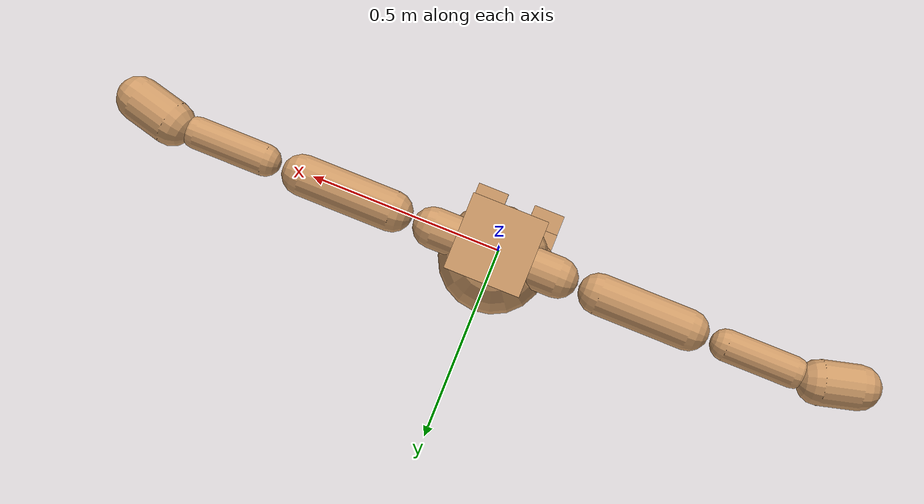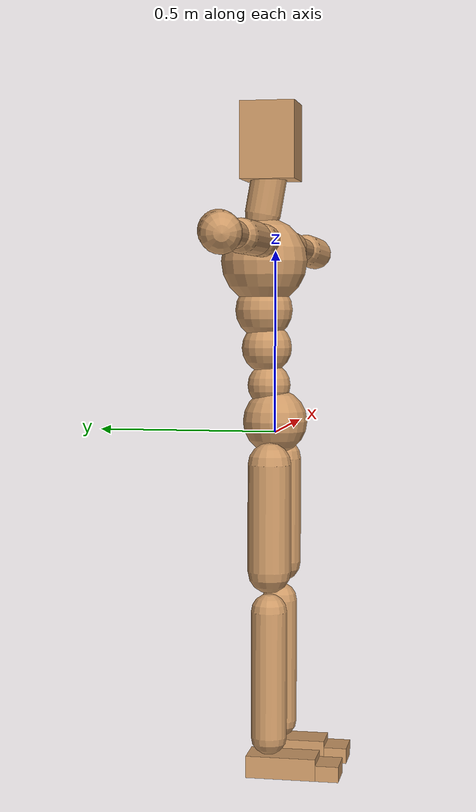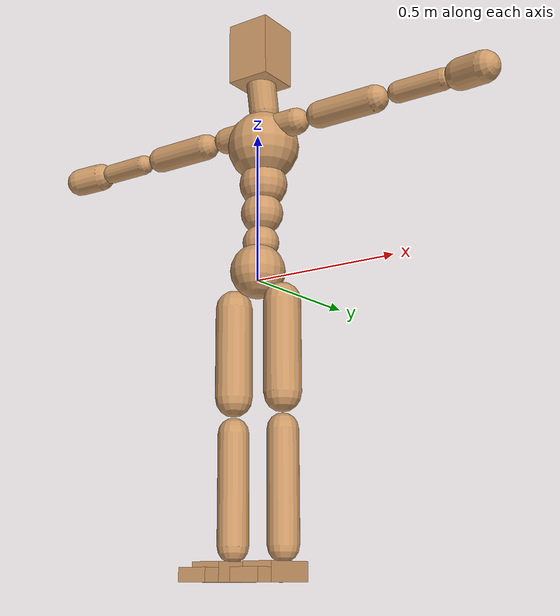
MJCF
<mujoco model="humanoid">
  <compiler coordinate="local" />
  <asset>
    <texture type="skybox" builtin="gradient" rgb1=".4 .5 .6" rgb2="0 0 0" width="100" height="100" />
    <texture builtin="flat" height="1278" mark="cross" markrgb="1 1 1" name="texgeom" random="0.01" rgb1="0.8 0.6 0.4" rgb2="0.8 0.6 0.4" type="cube" width="127" />
    <texture builtin="checker" height="100" name="texplane" rgb1="0 0 0" rgb2="0.8 0.8 0.8" type="2d" width="100" />
    <material name="MatPlane" reflectance="0.5" shininess="1" specular="1" texrepeat="60 60" texture="texplane" />
    <material name="geom" texture="texgeom" texuniform="true" />
  </asset>
  <worldbody>
    <light cutoff="100" diffuse="1 1 1" dir="-0 0 -1.3" directional="true" exponent="1" pos="0 0 1.3" specular=".1 .1 .1" />
    <body name="Hips" pos="0.0000 0.0000 0.0000">
      <geom type="sphere" size="0.09" pos="0 0 0.03" density="1000" material="geom" conaffinity="1" condim="3" contype="7" margin="0.001" rgba="0.8 0.6 .4 1" />
        <body name="Spine" pos="0.0000 0.0473 0.0710">
          <joint name="Spine_x" type="hinge" pos="0 0 0" axis="1.0000 0.0000 0.0000" stiffness="800" damping="80" armature="0.02" range="-180.0000 180.0000" limited="true" />
          <joint name="Spine_y" type="hinge" pos="0 0 0" axis="0.0000 1.0000 0.0000" stiffness="800" damping="80" armature="0.02" range="-180.0000 180.0000" limited="true" />
          <joint name="Spine_z" type="hinge" pos="0 0 0" axis="0.0000 0.0000 1.0000" stiffness="800" damping="80" armature="0.02" range="-180.0000 180.0000" limited="true" />
          <geom type="sphere" size="0.06" pos="0 -0.03 0.06" density="1000" material="geom" conaffinity="1" condim="3" contype="7" margin="0.001" rgba="0.8 0.6 .4 1" />
            <body name="Spine1" pos="0.0000 0.0164 0.0932">
              <joint name="Spine1_x" type="hinge" pos="0 0 0" axis="1.0000 0.0000 0.0000" stiffness="800" damping="80" armature="0.02" range="-180.0000 180.0000" limited="true" />
              <joint name="Spine1_y" type="hinge" pos="0 0 0" axis="0.0000 1.0000 0.0000" stiffness="800" damping="80" armature="0.02" range="-180.0000 180.0000" limited="true" />
              <joint name="Spine1_z" type="hinge" pos="0 0 0" axis="0.0000 0.0000 1.0000" stiffness="800" damping="80" armature="0.02" range="-180.0000 180.0000" limited="true" />
              <geom type="sphere" size="0.07" pos="0 -0.04 0.07" density="1000" material="geom" conaffinity="1" condim="3" contype="7" margin="0.001" rgba="0.8 0.6 .4 1" />
                <body name="Spine2" pos="0.0000 0.0082 0.0943">
                  <joint name="Spine2_x" type="hinge" pos="0 0 0" axis="1.0000 0.0000 0.0000" stiffness="800" damping="80" armature="0.02" range="-180.0000 180.0000" limited="true" />
                  <joint name="Spine2_y" type="hinge" pos="0 0 0" axis="0.0000 1.0000 0.0000" stiffness="800" damping="80" armature="0.02" range="-180.0000 180.0000" limited="true" />
                  <joint name="Spine2_z" type="hinge" pos="0 0 0" axis="0.0000 0.0000 1.0000" stiffness="800" damping="80" armature="0.02" range="-180.0000 180.0000" limited="true" />
                  <geom type="sphere" size="0.08" pos="0 -0.04 0.08" density="1000" material="geom" conaffinity="1" condim="3" contype="7" margin="0.001" rgba="0.8 0.6 .4 1" />
                    <body name="Spine3" pos="0.0000 0.0000 0.0947">
                      <joint name="Spine3_x" type="hinge" pos="0 0 0" axis="1.0000 0.0000 0.0000" stiffness="800" damping="80" armature="0.02" range="-180.0000 180.0000" limited="true" />
                      <joint name="Spine3_y" type="hinge" pos="0 0 0" axis="0.0000 1.0000 0.0000" stiffness="800" damping="80" armature="0.02" range="-180.0000 180.0000" limited="true" />
                      <joint name="Spine3_z" type="hinge" pos="0 0 0" axis="0.0000 0.0000 1.0000" stiffness="800" damping="80" armature="0.02" range="-180.0000 180.0000" limited="true" />
                      <geom type="sphere" size="0.12" pos="0 -0.04 0.12" density="1000" material="geom" conaffinity="1" condim="3" contype="7" margin="0.001" rgba="0.8 0.6 .4 1" />
                        <body name="Neck" pos="0.0000 -0.0355 0.2485">
                          <joint name="Neck_x" type="hinge" pos="0 0 0" axis="1.0000 0.0000 0.0000" stiffness="200" damping="20" armature="0.02" range="-180.0000 180.0000" limited="true" />
                          <joint name="Neck_y" type="hinge" pos="0 0 0" axis="0.0000 1.0000 0.0000" stiffness="200" damping="20" armature="0.02" range="-180.0000 180.0000" limited="true" />
                          <joint name="Neck_z" type="hinge" pos="0 0 0" axis="0.0000 0.0000 1.0000" stiffness="200" damping="20" armature="0.02" range="-180.0000 180.0000" limited="true" />
                          <geom type="capsule" size="0.05" contype="1" conaffinity="1" fromto="0.0000 0.0000 0.0000 0.0000 -0.0203 0.1154" density="1000" material="geom" condim="3" margin="0.001" rgba="0.8 0.6 .4 1" />
                            <body name="Head" pos="0.0000 -0.0226 0.1282">
                              <joint name="Head_x" type="hinge" pos="0 0 0" axis="1.0000 0.0000 0.0000" stiffness="200" damping="20" armature="0.02" range="-180.0000 180.0000" limited="true" />
                              <joint name="Head_y" type="hinge" pos="0 0 0" axis="0.0000 1.0000 0.0000" stiffness="200" damping="20" armature="0.02" range="-180.0000 180.0000" limited="true" />
                              <joint name="Head_z" type="hinge" pos="0 0 0" axis="0.0000 0.0000 1.0000" stiffness="200" damping="20" armature="0.02" range="-180.0000 180.0000" limited="true" />
                              <geom type="box" size="0.075 0.075 0.105" pos="0 0 0.07" quat="1 0 0 0" density="1000" material="geom" conaffinity="1" condim="3" contype="7" margin="0.001" rgba="0.8 0.6 .4 1" />
                            </body>
                        </body>
                        <body name="RightShoulder" pos="-0.0320 -0.0533 0.1728">
                          <joint name="RightShoulder_x" type="hinge" pos="0 0 0" axis="1.0000 0.0000 0.0000" stiffness="400" damping="40" armature="0.02" range="-180.0000 180.0000" limited="true" />
                          <joint name="RightShoulder_y" type="hinge" pos="0 0 0" axis="0.0000 1.0000 0.0000" stiffness="400" damping="40" armature="0.02" range="-180.0000 180.0000" limited="true" />
                          <joint name="RightShoulder_z" type="hinge" pos="0 0 0" axis="0.0000 0.0000 1.0000" stiffness="400" damping="40" armature="0.02" range="-180.0000 180.0000" limited="true" />
                          <geom type="capsule" size="0.045" contype="1" conaffinity="1" fromto="-0.045 0.0000 0.0000 -0.11 0.0000 0.0000" density="1000" material="geom" condim="3" margin="0.001" rgba="0.8 0.6 .4 1" />
                            <body name="RightArm" pos="-0.1589 0.0000 0.0000">
                              <joint name="RightArm_x" type="hinge" pos="0 0 0" axis="1.0000 0.0000 0.0000" stiffness="400" damping="40" armature="0.02" range="-180.0000 180.0000" limited="true" />
                              <joint name="RightArm_y" type="hinge" pos="0 0 0" axis="0.0000 1.0000 0.0000" stiffness="400" damping="40" armature="0.02" range="-180.0000 180.0000" limited="true" />
                              <joint name="RightArm_z" type="hinge" pos="0 0 0" axis="0.0000 0.0000 1.0000" stiffness="400" damping="40" armature="0.02" range="-180.0000 180.0000" limited="true" />
                              <geom type="capsule" size="0.045" contype="1" conaffinity="1" fromto="-0.045 0.0000 0.0000 -0.25 0.0000 -0.0000" density="1000" material="geom" condim="3" margin="0.001" rgba="0.8 0.6 .4 1" />
                                <body name="RightForeArm" pos="-0.2954 0.0000 -0.0000">
                                  <joint name="RightForeArm_x" type="hinge" pos="0 0 0" axis="1.0000 0.0000 0.0000" stiffness="300" damping="30" armature="0.02" range="-180.0000 180.0000" limited="true" />
                                  <joint name="RightForeArm_y" type="hinge" pos="0 0 0" axis="0.0000 1.0000 0.0000" stiffness="300" damping="80" armature="0.02" range="-180.0000 180.0000" limited="true" />
                                  <joint name="RightForeArm_z" type="hinge" pos="0 0 0" axis="0.0000 0.0000 1.0000" stiffness="300" damping="30" armature="0.02" range="-180.0000 180.0000" limited="true" />
                                  <geom type="capsule" size="0.035" contype="1" conaffinity="1" fromto="-0.04 0.0000 0.0000 -0.195 0.0000 0.0000" density="1000" material="geom" condim="3" margin="0.001" rgba="0.8 0.6 .4 1" />
                                    <body name="RightHand" pos="-0.2327 0.0000 0.0000">
                                      <joint name="RightHand_x" type="hinge" pos="0 0 0" axis="1.0000 0.0000 0.0000" stiffness="200" damping="20" armature="0.02" range="-180.0000 180.0000" limited="true" />
                                      <joint name="RightHand_y" type="hinge" pos="0 0 0" axis="0.0000 1.0000 0.0000" stiffness="200" damping="20" armature="0.02" range="-180.0000 180.0000" limited="true" />
                                      <joint name="RightHand_z" type="hinge" pos="0 0 0" axis="0.0000 0.0000 1.0000" stiffness="200" damping="20" armature="0.02" range="-180.0000 180.0000" limited="true" />
                                      <geom type="capsule" size="0.05" contype="1" conaffinity="1" fromto="-0.02 0.0000 0.0000 -0.1039 -0.0209 -0.0084" density="1000" material="geom" condim="3" margin="0.001" rgba="0.8 0.6 .4 1" />
                                    </body>
                                </body>
                            </body>
                        </body>
                        <body name="LeftShoulder" pos="0.0320 -0.0533 0.1728">
                          <joint name="LeftShoulder_x" type="hinge" pos="0 0 0" axis="-1.0000 0.0000 0.0000" stiffness="400" damping="40" armature="0.02" range="-180.0000 180.0000" limited="true" />
                          <joint name="LeftShoulder_y" type="hinge" pos="0 0 0" axis="0.0000 1.0000 0.0000" stiffness="400" damping="40" armature="0.02" range="-180.0000 180.0000" limited="true" />
                          <joint name="LeftShoulder_z" type="hinge" pos="0 0 0" axis="0.0000 0.0000 1.0000" stiffness="400" damping="40" armature="0.02" range="-180.0000 180.0000" limited="true" />
                          <geom type="capsule" size="0.045" contype="1" conaffinity="1" fromto="0.045 0.0000 0.0000 0.11 0.0000 0.0000" density="1000" material="geom" condim="3" margin="0.001" rgba="0.8 0.6 .4 1" />
                            <body name="LeftArm" pos="0.1589 0.0000 0.0000">
                              <joint name="LeftArm_x" type="hinge" pos="0 0 0" axis="-1.0000 0.0000 0.0000" stiffness="400" damping="40" armature="0.02" range="-180.0000 180.0000" limited="true" />
                              <joint name="LeftArm_y" type="hinge" pos="0 0 0" axis="0.0000 1.0000 0.0000" stiffness="400" damping="40" armature="0.02" range="-180.0000 180.0000" limited="true" />
                              <joint name="LeftArm_z" type="hinge" pos="0 0 0" axis="0.0000 0.0000 1.0000" stiffness="400" damping="40" armature="0.02" range="-180.0000 180.0000" limited="true" />
                              <geom type="capsule" size="0.045" contype="1" conaffinity="1" fromto="0.045 0.0000 0.0000 0.25 0.0000 -0.0000" density="1000" material="geom" condim="3" margin="0.001" rgba="0.8 0.6 .4 1" />
                                <body name="LeftForeArm" pos="0.2954 0.0000 0.0000">
                                  <joint name="LeftForeArm_x" type="hinge" pos="0 0 0" axis="-1.0000 0.0000 0.0000" stiffness="300" damping="30" armature="0.02" range="-180.0000 180.0000" limited="true" />
                                  <joint name="LeftForeArm_y" type="hinge" pos="0 0 0" axis="0.0000 1.0000 0.0000" stiffness="300" damping="30" armature="0.02" range="-180.0000 180.0000" limited="true" />
                                  <joint name="LeftForeArm_z" type="hinge" pos="0 0 0" axis="0.0000 0.0000 1.0000" stiffness="300" damping="30" armature="0.02" range="-180.0000 180.0000" limited="true" />
                                  <geom type="capsule" size="0.035" contype="1" conaffinity="1" fromto="0.04 0.0000 0.0000 0.195 0.0000 0.0000" density="1000" material="geom" condim="3" margin="0.001" rgba="0.8 0.6 .4 1" />
                                    <body name="LeftHand" pos="0.2327 0.0000 0.0000">
                                      <joint name="LeftHand_x" type="hinge" pos="0 0 0" axis="-1.0000 0.0000 0.0000" stiffness="200" damping="20" armature="0.02" range="-180.0000 180.0000" limited="true" />
                                      <joint name="LeftHand_y" type="hinge" pos="0 0 0" axis="0.0000 1.0000 0.0000" stiffness="200" damping="20" armature="0.02" range="-180.0000 180.0000" limited="true" />
                                      <joint name="LeftHand_z" type="hinge" pos="0 0 0" axis="0.0000 0.0000 1.0000" stiffness="200" damping="20" armature="0.02" range="-180.0000 180.0000" limited="true" />
                                      <geom type="capsule" size="0.05" contype="1" conaffinity="1" fromto="0.02 0.0000 0.0000 0.1039 -0.0209 -0.0084" density="1000" material="geom" condim="3" margin="0.001" rgba="0.8 0.6 .4 1" />
                                    </body>
                                </body>
                            </body>
                        </body>
                    </body>
                </body>
            </body>
        </body>
        <body name="RightUpLeg" pos="-0.0949 0.0000 -0.0277">
          <joint name="RightUpLeg_x" type="hinge" pos="0 0 0" axis="1.0000 0.0000 0.0000" stiffness="500" damping="50" armature="0.02" range="-180.0000 180.0000" limited="true" />
          <joint name="RightUpLeg_y" type="hinge" pos="0 0 0" axis="0.0000 1.0000 0.0000" stiffness="500" damping="50" armature="0.02" range="-180.0000 180.0000" limited="true" />
          <joint name="RightUpLeg_z" type="hinge" pos="0 0 0" axis="0.0000 0.0000 1.0000" stiffness="500" damping="50" armature="0.02" range="-180.0000 180.0000" limited="true" />
          <geom type="capsule" size="0.06" contype="1" conaffinity="1" fromto="0.0000 0.0000 -0.055 0.0000 0.0000 -0.35" density="1000" material="geom" condim="3" margin="0.001" rgba="0.8 0.6 .4 1" />
            <body name="RightLeg" pos="0.0000 -0.0000 -0.4121">
              <joint name="RightLeg_x" type="hinge" pos="0 0 0" axis="1.0000 0.0000 0.0000" stiffness="500" damping="50" armature="0.02" range="-180.0000 180.0000" limited="true" />
              <joint name="RightLeg_y" type="hinge" pos="0 0 0" axis="0.0000 1.0000 0.0000" stiffness="500" damping="50" armature="0.02" range="-180.0000 180.0000" limited="true" />
              <joint name="RightLeg_z" type="hinge" pos="0 0 0" axis="0.0000 0.0000 1.0000" stiffness="500" damping="50" armature="0.02" range="-180.0000 180.0000" limited="true" />
              <geom type="capsule" size="0.05" contype="1" conaffinity="1" fromto="0.0000 0.0000 -0.05 0.0000 0.0000 -0.4" density="1000" material="geom" condim="3" margin="0.001" rgba="0.8 0.6 .4 1" />
                <body name="RightFoot" pos="0.0000 0.0000 -0.4561">
                  <joint name="RightFoot_x" type="hinge" pos="0 0 0" axis="1.0000 0.0000 0.0000" stiffness="100" damping="20" armature="0.02" range="-180.0000 180.0000" limited="true" />
                  <joint name="RightFoot_y" type="hinge" pos="0 0 0" axis="0.0000 1.0000 0.0000" stiffness="100" damping="20" armature="0.02" range="-180.0000 180.0000" limited="true" />
                  <joint name="RightFoot_z" type="hinge" pos="0 0 0" axis="0.0000 0.0000 1.0000" stiffness="100" damping="20" armature="0.02" range="-180.0000 180.0000" limited="true" />
                  <geom type="box" size="0.09605 0.0500 0.03025" pos="0.0000 -0.039796  -0.01975" quat="0.7071 -0.0 0.0 0.7071" density="1000" material="geom" conaffinity="1" condim="3" contype="7" margin="0.001" rgba="0.8 0.6 .4 1" />
                    <body name="RightToeBase" pos="0.0000 -0.1607 -0.0585">
                      <joint name="RightToeBase_x" type="hinge" pos="0 0 0" axis="1.0000 0.0000 0.0000" stiffness="60" damping="12" armature="0.02" range="-180.0000 180.0000" limited="true" />
                      <joint name="RightToeBase_y" type="hinge" pos="0 0 0" axis="0.0000 1.0000 0.0000" stiffness="60" damping="12" armature="0.02" range="-180.0000 180.0000" limited="true" />
                      <joint name="RightToeBase_z" type="hinge" pos="0 0 0" axis="0.0000 0.0000 1.0000" stiffness="60" damping="12" armature="0.02" range="-180.0000 180.0000" limited="true" />
                      <geom type="box" size="0.0500 0.032 0.0215" pos="0 -0.00716 0.03002" quat="1 0 0 0" density="1000" material="geom" conaffinity="1" condim="3" contype="7" margin="0.001" rgba="0.8 0.6 .4 1" />
                    </body>
                </body>
            </body>
        </body>
        <body name="LeftUpLeg" pos="0.0949 0.0000 -0.0277">
          <joint name="LeftUpLeg_x" type="hinge" pos="0 0 0" axis="-1.0000 0.0000 0.0000" stiffness="500" damping="50" armature="0.02" range="-180.0000 180.0000" limited="true" />
          <joint name="LeftUpLeg_y" type="hinge" pos="0 0 0" axis="0.0000 1.0000 0.0000" stiffness="500" damping="50" armature="0.02" range="-180.0000 180.0000" limited="true" />
          <joint name="LeftUpLeg_z" type="hinge" pos="0 0 0" axis="0.0000 0.0000 1.0000" stiffness="500" damping="50" armature="0.02" range="-180.0000 180.0000" limited="true" />
          <geom type="capsule" size="0.06" contype="1" conaffinity="1" fromto="0.0000 0.0000 -0.055 0.0000 0.0000 -0.35" density="1000" material="geom" condim="3" margin="0.001" rgba="0.8 0.6 .4 1" />
            <body name="LeftLeg" pos="0.0000 0.0000 -0.4121">
              <joint name="LeftLeg_x" type="hinge" pos="0 0 0" axis="-1.0000 0.0000 0.0000" stiffness="500" damping="50" armature="0.02" range="-180.0000 180.0000" limited="true" />
              <joint name="LeftLeg_y" type="hinge" pos="0 0 0" axis="0.0000 1.0000 0.0000" stiffness="500" damping="50" armature="0.02" range="-180.0000 180.0000" limited="true" />
              <joint name="LeftLeg_z" type="hinge" pos="0 0 0" axis="0.0000 0.0000 1.0000" stiffness="500" damping="50" armature="0.02" range="-180.0000 180.0000" limited="true" />
              <geom type="capsule" size="0.05" contype="1" conaffinity="1" fromto="0.0000 0.0000 -0.05 0.0000 0.0000 -0.4" density="1000" material="geom" condim="3" margin="0.001" rgba="0.8 0.6 .4 1" />
                <body name="LeftFoot" pos="0.0000 0.0000 -0.4561">
                  <joint name="LeftFoot_x" type="hinge" pos="0 0 0" axis="-1.0000 0.0000 0.0000" stiffness="100" damping="20" armature="0.02" range="-180.0000 180.0000" limited="true" />
                  <joint name="LeftFoot_y" type="hinge" pos="0 0 0" axis="0.0000 1.0000 0.0000" stiffness="100" damping="20" armature="0.02" range="-180.0000 180.0000" limited="true" />
                  <joint name="LeftFoot_z" type="hinge" pos="0 0 0" axis="0.0000 0.0000 1.0000" stiffness="100" damping="20" armature="0.02" range="-180.0000 180.0000" limited="true" />
                  <geom type="box" size="0.09605 0.0500 0.03025" pos="0.0000 -0.039796 -0.01975" quat="0.7071 -0.0 0.0 0.7071" density="1000" material="geom" conaffinity="1" condim="3" contype="7" margin="0.001" rgba="0.8 0.6 .4 1" />
                    <body name="LeftToeBase" pos="0.0000 -0.1607 -0.0585">
                      <joint name="LeftToeBase_x" type="hinge" pos="0 0 0" axis="-1.0000 0.0000 0.0000" stiffness="60" damping="12" armature="0.02" range="-180.0000 180.0000" limited="true" />
                      <joint name="LeftToeBase_y" type="hinge" pos="0 0 0" axis="0.0000 1.0000 0.0000" stiffness="60" damping="12" armature="0.02" range="-180.0000 180.0000" limited="true" />
                      <joint name="LeftToeBase_z" type="hinge" pos="0 0 0" axis="0.0000 0.0000 1.0000" stiffness="60" damping="12" armature="0.02" range="-180.0000 180.0000" limited="true" />
                      <geom type="box" size="0.0500 0.032 0.0215" pos="0 -0.00716 0.03002" quat="1 0 0 0" density="1000" material="geom" conaffinity="1" condim="3" contype="7" margin="0.001" rgba="0.8 0.6 .4 1" />
                    </body>
                </body>
            </body>
        </body>
    <joint type="free" name="Hips" limited="false" actuatorfrclimited="false" /></body>
  </worldbody>
  <actuator>
      <motor name="Spine_x" joint="Spine_x" gear="200" />
      <motor name="Spine_y" joint="Spine_y" gear="200" />
      <motor name="Spine_z" joint="Spine_z" gear="200" />
      <motor name="Spine1_x" joint="Spine1_x" gear="200" />
      <motor name="Spine1_y" joint="Spine1_y" gear="200" />
      <motor name="Spine1_z" joint="Spine1_z" gear="200" />
      <motor name="Spine2_x" joint="Spine2_x" gear="200" />
      <motor name="Spine2_y" joint="Spine2_y" gear="200" />
      <motor name="Spine2_z" joint="Spine2_z" gear="200" />
      <motor name="Spine3_x" joint="Spine3_x" gear="200" />
      <motor name="Spine3_y" joint="Spine3_y" gear="200" />
      <motor name="Spine3_z" joint="Spine3_z" gear="200" />
      <motor name="Neck_x" joint="Neck_x" gear="100" />
      <motor name="Neck_y" joint="Neck_y" gear="100" />
      <motor name="Neck_z" joint="Neck_z" gear="100" />
      <motor name="Head_x" joint="Head_x" gear="100" />
      <motor name="Head_y" joint="Head_y" gear="100" />
      <motor name="Head_z" joint="Head_z" gear="100" />
      <motor name="RightShoulder_x" joint="RightShoulder_x" gear="200" />
      <motor name="RightShoulder_y" joint="RightShoulder_y" gear="200" />
      <motor name="RightShoulder_z" joint="RightShoulder_z" gear="200" />
      <motor name="RightArm_x" joint="RightArm_x" gear="200" />
      <motor name="RightArm_y" joint="RightArm_y" gear="200" />
      <motor name="RightArm_z" joint="RightArm_z" gear="200" />
      <motor name="RightForeArm_x" joint="RightForeArm_x" gear="100" />
      <motor name="RightForeArm_y" joint="RightForeArm_y" gear="100" />
      <motor name="RightForeArm_z" joint="RightForeArm_z" gear="100" />
      <motor name="RightHand_x" joint="RightHand_x" gear="70" />
      <motor name="RightHand_y" joint="RightHand_y" gear="70" />
      <motor name="RightHand_z" joint="RightHand_z" gear="70" />
      <motor name="LeftShoulder_x" joint="LeftShoulder_x" gear="200" />
      <motor name="LeftShoulder_y" joint="LeftShoulder_y" gear="200" />
      <motor name="LeftShoulder_z" joint="LeftShoulder_z" gear="200" />
      <motor name="LeftArm_x" joint="LeftArm_x" gear="200" />
      <motor name="LeftArm_y" joint="LeftArm_y" gear="200" />
      <motor name="LeftArm_z" joint="LeftArm_z" gear="200" />
      <motor name="LeftForeArm_x" joint="LeftForeArm_x" gear="100" />
      <motor name="LeftForeArm_y" joint="LeftForeArm_y" gear="100" />
      <motor name="LeftForeArm_z" joint="LeftForeArm_z" gear="100" />
      <motor name="LeftHand_x" joint="LeftHand_x" gear="70" />
      <motor name="LeftHand_y" joint="LeftHand_y" gear="70" />
      <motor name="LeftHand_z" joint="LeftHand_z" gear="70" />
      <motor name="RightUpLeg_x" joint="RightUpLeg_x" gear="250" />
      <motor name="RightUpLeg_y" joint="RightUpLeg_y" gear="250" />
      <motor name="RightUpLeg_z" joint="RightUpLeg_z" gear="250" />
      <motor name="RightLeg_x" joint="RightLeg_x" gear="200" />
      <motor name="RightLeg_y" joint="RightLeg_y" gear="200" />
      <motor name="RightLeg_z" joint="RightLeg_z" gear="200" />
      <motor name="RightFoot_x" joint="RightFoot_x" gear="100" />
      <motor name="RightFoot_y" joint="RightFoot_y" gear="100" />
      <motor name="RightFoot_z" joint="RightFoot_z" gear="100" />
      <motor name="RightToeBase_x" joint="RightToeBase_x" gear="50" />
      <motor name="RightToeBase_y" joint="RightToeBase_y" gear="50" />
      <motor name="RightToeBase_z" joint="RightToeBase_z" gear="50" />
      <motor name="LeftUpLeg_x" joint="LeftUpLeg_x" gear="250" />
      <motor name="LeftUpLeg_y" joint="LeftUpLeg_y" gear="250" />
      <motor name="LeftUpLeg_z" joint="LeftUpLeg_z" gear="250" />
      <motor name="LeftLeg_x" joint="LeftLeg_x" gear="200" />
      <motor name="LeftLeg_y" joint="LeftLeg_y" gear="200" />
      <motor name="LeftLeg_z" joint="LeftLeg_z" gear="200" />
      <motor name="LeftFoot_x" joint="LeftFoot_x" gear="100" />
      <motor name="LeftFoot_y" joint="LeftFoot_y" gear="100" />
      <motor name="LeftFoot_z" joint="LeftFoot_z" gear="100" />
      <motor name="LeftToeBase_x" joint="LeftToeBase_x" gear="50" />
      <motor name="LeftToeBase_y" joint="LeftToeBase_y" gear="50" />
      <motor name="LeftToeBase_z" joint="LeftToeBase_z" gear="50" />
  </actuator>
  <contact>
      <exclude body1="Spine" body2="Spine2" />
      <exclude body1="Spine1" body2="Spine3" />
      <exclude body1="Spine2" body2="Neck" />
      <exclude body1="Spine3" body2="Head" />
      <exclude body1="Spine" body2="Spine3" />
      <exclude body1="Spine1" body2="Neck" />
      <exclude body1="Spine2" body2="Head" />
      <exclude body1="RightArm" body2="Spine3" />
      <exclude body1="LeftArm" body2="Spine3" />
      <exclude body1="RightArm" body2="Spine2" />
      <exclude body1="LeftArm" body2="Spine2" />
  </contact>
  <sensor />
  <size njmax="700" nconmax="700" />
</mujoco>
